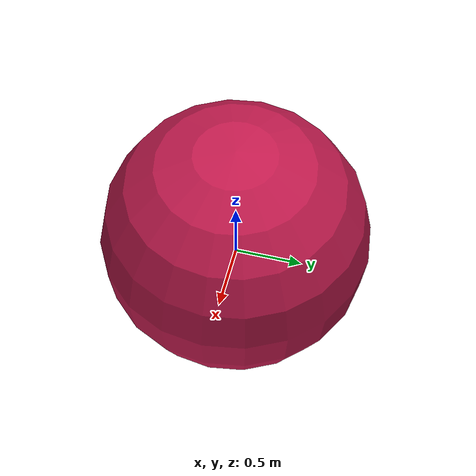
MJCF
<mujoco model="jumping_ball">
  <compiler meshdir="./" texturedir="./" />
  <asset>
    <texture name="body" type="cube" builtin="checker" rgb1="1.0 .1 .1" rgb2=".5 0.1 0.5" width="100" height="100"/>
    <material name="body" texture="body"/>
  </asset>

  <default>
    <mesh scale=".01 .01 .01"/>
    <geom contype="1" conaffinity="1" condim="4" friction=".5 .02 .02"/>
    <default class="root">
      <joint pos="0 0 0" limited="false" armature="0" damping="0" stiffness="0"/>
    </default>
  </default>

  <worldbody>
    <body pos="0 0 0.6" quat="1 0 0 -1" name="head_body">
      <body name="egocentric_camera" pos="0 0.15 0.5" zaxis="0 -0.99503719021 0.09950371902">
        <inertial pos="0 0 0" mass="1" diaginertia="1 1 1"/>
        <joint name="camera_height" type="slide" axis="0 1 0" limited="true" range="-0.5 0.5"/>
        <joint name="camera_tilt" type="hinge" axis="1 0 0" limited="true" range="-0.35 0.35"/>
        <camera name="egocentric" fovy="60"/>

      </body>
      <camera name="tracking" pos="1.5 1.5 .7" xyaxes="-1 1 0 -1 -1 4" mode="trackcom"/>
      <joint name="steer" type="hinge" axis="0 0 -1" class="root" damping="4"/>

      <site name="torso_site" pos="0 0 0" size="0.05" rgba="1 0 0 1" group="4"/>

      <body pos="0 0 -.4" name="torso">
        <!-- wheel -->
        <joint name="kick" type="slide" damping="100" limited="true" range="0 20" axis="0 0 -1" stiffness="0" solimplimit=".95 .99 .001" springref="-.4"/>-->
        <joint name="roll" type="hinge" axis="-1 0 0" damping="2"/>
         <geom name="shell" type="ellipsoid" size="1 1 1" material="body" contype="1" conaffinity="1" condim="4" friction=".5 .02 .02" mass="20"/>
      </body>
    </body>
  </worldbody>

  <sensor>
    <velocimeter site="torso_site" name="sensor_torso_vel"/>
    <gyro site="torso_site" name="sensor_torso_gyro"/>
    <accelerometer site="torso_site" name="sensor_torso_accel"/>
  </sensor>

  <actuator>
    <general name="roll" joint="roll" ctrlrange="-1 1" ctrllimited="true" gear="-50" biasprm="0" biastype="affine"/>
    <motor name="steer" joint="steer" ctrlrange="-1 1" ctrllimited="true" gear="30"/>
    <general name="kick" joint="kick" ctrlrange="-1 1" ctrllimited="true" gear="1000" biasprm="0" biastype="affine"/>
    <velocity name="camera_height" joint="camera_height" ctrlrange="-1 1" ctrllimited="true"/>
    <velocity name="camera_tilt" joint="camera_tilt" ctrlrange="-1 1" ctrllimited="true"/>
  </actuator>
</mujoco>
